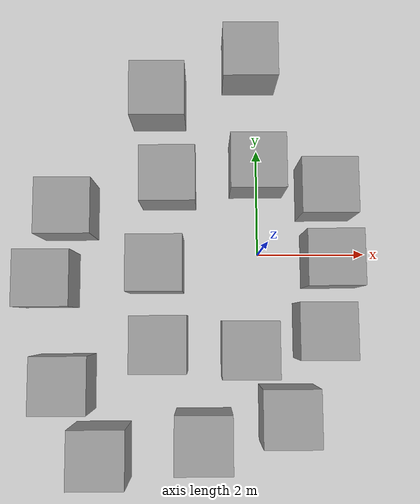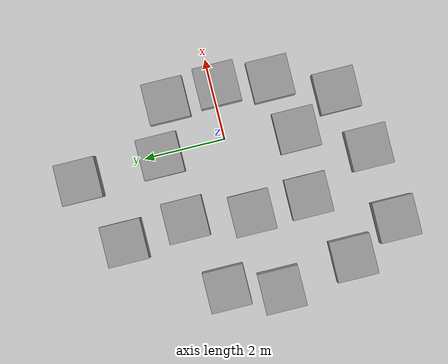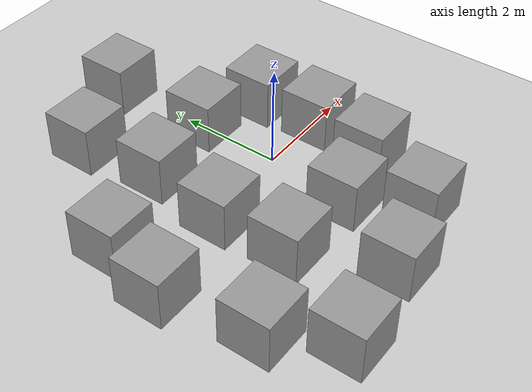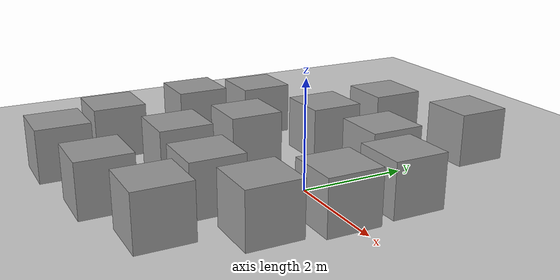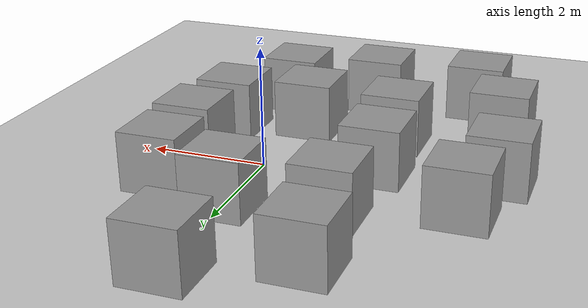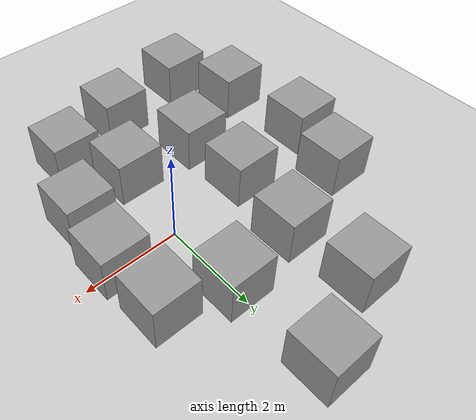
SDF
<sdf version="1.6">
 <world name="default">
  <light name="sun" type="directional">
   <pose>0 0 10 0 -0 0</pose>
   <diffuse>0.8 0.8 0.8 1</diffuse>
   <specular>0.2 0.2 0.2 1</specular>
   <attenuation>
    <range>1000</range>
    <constant>0.9</constant>
    <linear>0.01</linear>
    <quadratic>0.001</quadratic>
   </attenuation>
   <direction>-0.5 0.1 -0.9</direction>
  </light>
  <model name="ground_plane">
   <static>1</static>
   <link name="link">
    <collision name="collision">
     <geometry><plane><normal>0 0 1</normal><size>100 100</size></plane></geometry>
     <surface>
      <contact><collide_bitmask>65535</collide_bitmask></contact>
      <friction><ode><mu>100</mu><mu2>50</mu2></ode></friction>
     </surface>
    </collision>
    <visual name="visual">
     <cast_shadows>0</cast_shadows>
     <geometry><plane><normal>0 0 1</normal><size>100 100</size></plane></geometry>
     <material>
      <script><uri>file://media/materials/scripts/gazebo.material</uri><name>Gazebo/Grey</name></script>
     </material>
    </visual>
   </link>
  </model>
  <gravity>0 0 -9.8</gravity>
  <magnetic_field>6e-06 2.3e-05 -4.2e-05</magnetic_field>
  <atmosphere type="adiabatic"/>
  <physics name="default_physics" default="0" type="ode">
   <max_step_size>0.001</max_step_size>
   <real_time_factor>1</real_time_factor>
   <real_time_update_rate>1000</real_time_update_rate>
  </physics>
  <scene><ambient>0.4 0.4 0.4 1</ambient><background>0.7 0.7 0.7 1</background><shadows>1</shadows></scene>
  <audio><device>default</device></audio>
  <spherical_coordinates>
   <surface_model>EARTH_WGS84</surface_model>
   <latitude_deg>0</latitude_deg>
   <longitude_deg>0</longitude_deg>
   <elevation>0</elevation>
   <heading_deg>0</heading_deg>
  </spherical_coordinates>
  <model name="unit_box">
   <pose>-0.027075 1.59786 0.499995 -1e-05 -0 -0</pose>
   <link name="link">
    <inertial>
     <mass>1</mass>
     <inertia>
      <ixx>0.166667</ixx>
      <ixy>0</ixy>
      <ixz>0</ixz>
      <iyy>0.166667</iyy>
      <iyz>0</iyz>
      <izz>0.166667</izz>
     </inertia>
    </inertial>
    <collision name="collision"><geometry><box><size>1 1 1</size></box></geometry></collision>
    <visual name="visual">
     <geometry><box><size>1 1 1</size></box></geometry>
     <material>
      <script><name>Gazebo/Grey</name><uri>file://media/materials/scripts/gazebo.material</uri></script>
     </material>
    </visual>
   </link>
  </model>
  <model name="unit_box_0">
   <pose>-1.8842 -0.215186 0.499995 0 1e-05 0</pose>
   <link name="link">
    <inertial>
     <mass>1</mass>
     <inertia>
      <ixx>0.166667</ixx>
      <ixy>0</ixy>
      <ixz>0</ixz>
      <iyy>0.166667</iyy>
      <iyz>0</iyz>
      <izz>0.166667</izz>
     </inertia>
    </inertial>
    <collision name="collision"><geometry><box><size>1 1 1</size></box></geometry></collision>
    <visual name="visual">
     <geometry><box><size>1 1 1</size></box></geometry>
     <material>
      <script><name>Gazebo/Grey</name><uri>file://media/materials/scripts/gazebo.material</uri></script>
     </material>
    </visual>
   </link>
  </model>
  <model name="unit_box_1">
   <pose>1.30206 -0.133608 0.499995 -1e-05 -0 -0</pose>
   <link name="link">
    <inertial>
     <mass>1</mass>
     <inertia>
      <ixx>0.166667</ixx>
      <ixy>0</ixy>
      <ixz>0</ixz>
      <iyy>0.166667</iyy>
      <iyz>0</iyz>
      <izz>0.166667</izz>
     </inertia>
    </inertial>
    <collision name="collision"><geometry><box><size>1 1 1</size></box></geometry></collision>
    <visual name="visual">
     <geometry><box><size>1 1 1</size></box></geometry>
     <material>
      <script><name>Gazebo/Grey</name><uri>file://media/materials/scripts/gazebo.material</uri></script>
     </material>
    </visual>
   </link>
  </model>
  <model name="unit_box_2">
   <pose>-0.204437 -1.73055 0.499995 0 1e-05 0</pose>
   <link name="link">
    <inertial>
     <mass>1</mass>
     <inertia>
      <ixx>0.166667</ixx>
      <ixy>0</ixy>
      <ixz>0</ixz>
      <iyy>0.166667</iyy>
      <iyz>0</iyz>
      <izz>0.166667</izz>
     </inertia>
    </inertial>
    <collision name="collision"><geometry><box><size>1 1 1</size></box></geometry></collision>
    <visual name="visual">
     <geometry><box><size>1 1 1</size></box></geometry>
     <material>
      <script><name>Gazebo/Grey</name><uri>file://media/materials/scripts/gazebo.material</uri></script>
     </material>
    </visual>
   </link>
  </model>
  <model name="unit_box_3">
   <pose>-1.80823 -1.63092 0.499995 -1e-05 -0 -0</pose>
   <link name="link">
    <inertial>
     <mass>1</mass>
     <inertia>
      <ixx>0.166667</ixx>
      <ixy>0</ixy>
      <ixz>0</ixz>
      <iyy>0.166667</iyy>
      <iyz>0</iyz>
      <izz>0.166667</izz>
     </inertia>
    </inertial>
    <collision name="collision"><geometry><box><size>1 1 1</size></box></geometry></collision>
    <visual name="visual">
     <geometry><box><size>1 1 1</size></box></geometry>
     <material>
      <script><name>Gazebo/Grey</name><uri>file://media/materials/scripts/gazebo.material</uri></script>
     </material>
    </visual>
   </link>
  </model>
  <model name="unit_box_4">
   <pose>-1.65726 1.3752 0.499995 0 1e-05 0</pose>
   <link name="link">
    <inertial>
     <mass>1</mass>
     <inertia>
      <ixx>0.166667</ixx>
      <ixy>0</ixy>
      <ixz>0</ixz>
      <iyy>0.166667</iyy>
      <iyz>0</iyz>
      <izz>0.166667</izz>
     </inertia>
    </inertial>
    <collision name="collision"><geometry><box><size>1 1 1</size></box></geometry></collision>
    <visual name="visual">
     <geometry><box><size>1 1 1</size></box></geometry>
     <material>
      <script><name>Gazebo/Grey</name><uri>file://media/materials/scripts/gazebo.material</uri></script>
     </material>
    </visual>
   </link>
  </model>
  <model name="unit_box_5">
   <pose>-1.8447 2.92954 0.499995 -1e-05 -0 -0</pose>
   <link name="link">
    <inertial>
     <mass>1</mass>
     <inertia>
      <ixx>0.166667</ixx>
      <ixy>0</ixy>
      <ixz>0</ixz>
      <iyy>0.166667</iyy>
      <iyz>0</iyz>
      <izz>0.166667</izz>
     </inertia>
    </inertial>
    <collision name="collision"><geometry><box><size>1 1 1</size></box></geometry></collision>
    <visual name="visual">
     <geometry><box><size>1 1 1</size></box></geometry>
     <material>
      <script><name>Gazebo/Grey</name><uri>file://media/materials/scripts/gazebo.material</uri></script>
     </material>
    </visual>
   </link>
  </model>
  <model name="unit_box_6">
   <pose>1.22657 1.14518 0.499995 0 1e-05 0</pose>
   <link name="link">
    <inertial>
     <mass>1</mass>
     <inertia>
      <ixx>0.166667</ixx>
      <ixy>0</ixy>
      <ixz>0</ixz>
      <iyy>0.166667</iyy>
      <iyz>0</iyz>
      <izz>0.166667</izz>
     </inertia>
    </inertial>
    <collision name="collision"><geometry><box><size>1 1 1</size></box></geometry></collision>
    <visual name="visual">
     <geometry><box><size>1 1 1</size></box></geometry>
     <material>
      <script><name>Gazebo/Grey</name><uri>file://media/materials/scripts/gazebo.material</uri></script>
     </material>
    </visual>
   </link>
  </model>
  <model name="unit_box_7">
   <pose>1.13727 -1.4123 0.499995 -1e-05 -0 -0</pose>
   <link name="link">
    <inertial>
     <mass>1</mass>
     <inertia>
      <ixx>0.166667</ixx>
      <ixy>0</ixy>
      <ixz>0</ixz>
      <iyy>0.166667</iyy>
      <iyz>0</iyz>
      <izz>0.166667</izz>
     </inertia>
    </inertial>
    <collision name="collision"><geometry><box><size>1 1 1</size></box></geometry></collision>
    <visual name="visual">
     <geometry><box><size>1 1 1</size></box></geometry>
     <material>
      <script><name>Gazebo/Grey</name><uri>file://media/materials/scripts/gazebo.material</uri></script>
     </material>
    </visual>
   </link>
  </model>
  <model name="unit_box_8">
   <pose>-3.50084 0.801968 0.499995 0 1e-05 0</pose>
   <link name="link">
    <inertial>
     <mass>1</mass>
     <inertia>
      <ixx>0.166667</ixx>
      <ixy>0</ixy>
      <ixz>0</ixz>
      <iyy>0.166667</iyy>
      <iyz>0</iyz>
      <izz>0.166667</izz>
     </inertia>
    </inertial>
    <collision name="collision"><geometry><box><size>1 1 1</size></box></geometry></collision>
    <visual name="visual">
     <geometry><box><size>1 1 1</size></box></geometry>
     <material>
      <script><name>Gazebo/Grey</name><uri>file://media/materials/scripts/gazebo.material</uri></script>
     </material>
    </visual>
   </link>
  </model>
  <model name="unit_box_9">
   <pose>-3.84714 -0.469213 0.499995 -1e-05 -0 -0</pose>
   <link name="link">
    <inertial>
     <mass>1</mass>
     <inertia>
      <ixx>0.166667</ixx>
      <ixy>0</ixy>
      <ixz>0</ixz>
      <iyy>0.166667</iyy>
      <iyz>0</iyz>
      <izz>0.166667</izz>
     </inertia>
    </inertial>
    <collision name="collision"><geometry><box><size>1 1 1</size></box></geometry></collision>
    <visual name="visual">
     <geometry><box><size>1 1 1</size></box></geometry>
     <material>
      <script><name>Gazebo/Grey</name><uri>file://media/materials/scripts/gazebo.material</uri></script>
     </material>
    </visual>
   </link>
  </model>
  <model name="unit_box_10">
   <pose>-3.51242 -2.31659 0.499995 0 1e-05 0</pose>
   <link name="link">
    <inertial>
     <mass>1</mass>
     <inertia>
      <ixx>0.166667</ixx>
      <ixy>0</ixy>
      <ixz>0</ixz>
      <iyy>0.166667</iyy>
      <iyz>0</iyz>
      <izz>0.166667</izz>
     </inertia>
    </inertial>
    <collision name="collision"><geometry><box><size>1 1 1</size></box></geometry></collision>
    <visual name="visual">
     <geometry><box><size>1 1 1</size></box></geometry>
     <material>
      <script><name>Gazebo/Grey</name><uri>file://media/materials/scripts/gazebo.material</uri></script>
     </material>
    </visual>
   </link>
  </model>
  <model name="unit_box_11">
   <pose>-0.145281 3.64668 0.499995 -1e-05 -0 -0</pose>
   <link name="link">
    <inertial>
     <mass>1</mass>
     <inertia>
      <ixx>0.166667</ixx>
      <ixy>0</ixy>
      <ixz>0</ixz>
      <iyy>0.166667</iyy>
      <iyz>0</iyz>
      <izz>0.166667</izz>
     </inertia>
    </inertial>
    <collision name="collision"><geometry><box><size>1 1 1</size></box></geometry></collision>
    <visual name="visual">
     <geometry><box><size>1 1 1</size></box></geometry>
     <material>
      <script><name>Gazebo/Grey</name><uri>file://media/materials/scripts/gazebo.material</uri></script>
     </material>
    </visual>
   </link>
  </model>
  <model name="unit_box_12">
   <pose>-1.02521 -3.31377 0.499995 0 1e-05 0</pose>
   <link name="link">
    <inertial>
     <mass>1</mass>
     <inertia>
      <ixx>0.166667</ixx>
      <ixy>0</ixy>
      <ixz>0</ixz>
      <iyy>0.166667</iyy>
      <iyz>0</iyz>
      <izz>0.166667</izz>
     </inertia>
    </inertial>
    <collision name="collision"><geometry><box><size>1 1 1</size></box></geometry></collision>
    <visual name="visual">
     <geometry><box><size>1 1 1</size></box></geometry>
     <material>
      <script><name>Gazebo/Grey</name><uri>file://media/materials/scripts/gazebo.material</uri></script>
     </material>
    </visual>
   </link>
  </model>
  <model name="unit_box_13">
   <pose>-2.84877 -3.54338 0.499995 -1e-05 -0 0</pose>
   <link name="link">
    <inertial>
     <mass>1</mass>
     <inertia>
      <ixx>0.166667</ixx>
      <ixy>0</ixy>
      <ixz>0</ixz>
      <iyy>0.166667</iyy>
      <iyz>0</iyz>
      <izz>0.166667</izz>
     </inertia>
    </inertial>
    <collision name="collision"><geometry><box><size>1 1 1</size></box></geometry></collision>
    <visual name="visual">
     <geometry><box><size>1 1 1</size></box></geometry>
     <material>
      <script><name>Gazebo/Grey</name><uri>file://media/materials/scripts/gazebo.material</uri></script>
     </material>
    </visual>
   </link>
  </model>
  <model name="unit_box_14">
   <pose>0.481117 -2.8892 0.5 0 -0 0</pose>
   <link name="link">
    <inertial>
     <mass>1</mass>
     <inertia>
      <ixx>0.166667</ixx>
      <ixy>0</ixy>
      <ixz>0</ixz>
      <iyy>0.166667</iyy>
      <iyz>0</iyz>
      <izz>0.166667</izz>
     </inertia>
    </inertial>
    <collision name="collision"><geometry><box><size>1 1 1</size></box></geometry></collision>
    <visual name="visual">
     <geometry><box><size>1 1 1</size></box></geometry>
     <material>
      <script><name>Gazebo/Grey</name><uri>file://media/materials/scripts/gazebo.material</uri></script>
     </material>
    </visual>
   </link>
  </model>
 </world>
</sdf>
